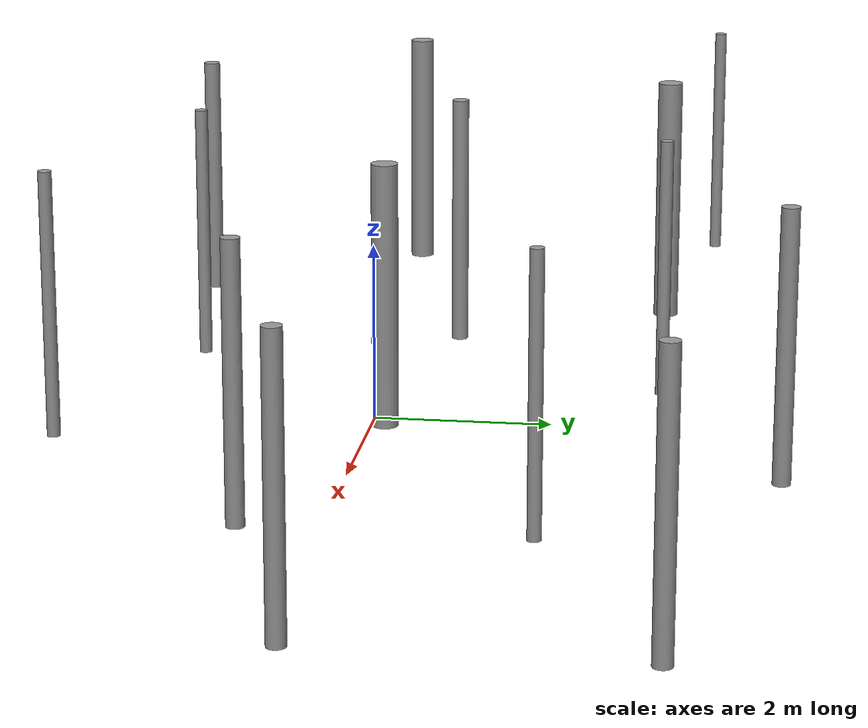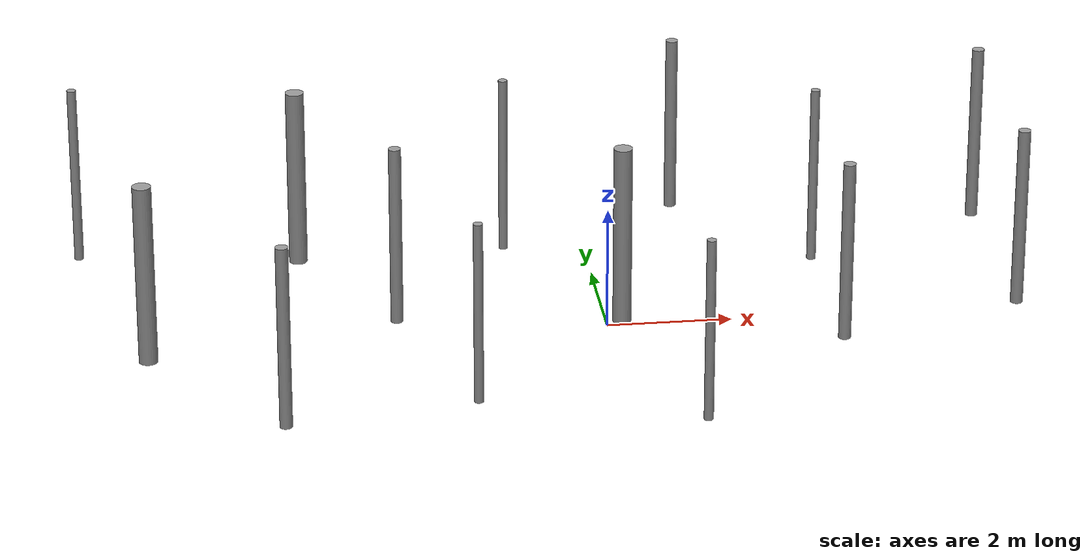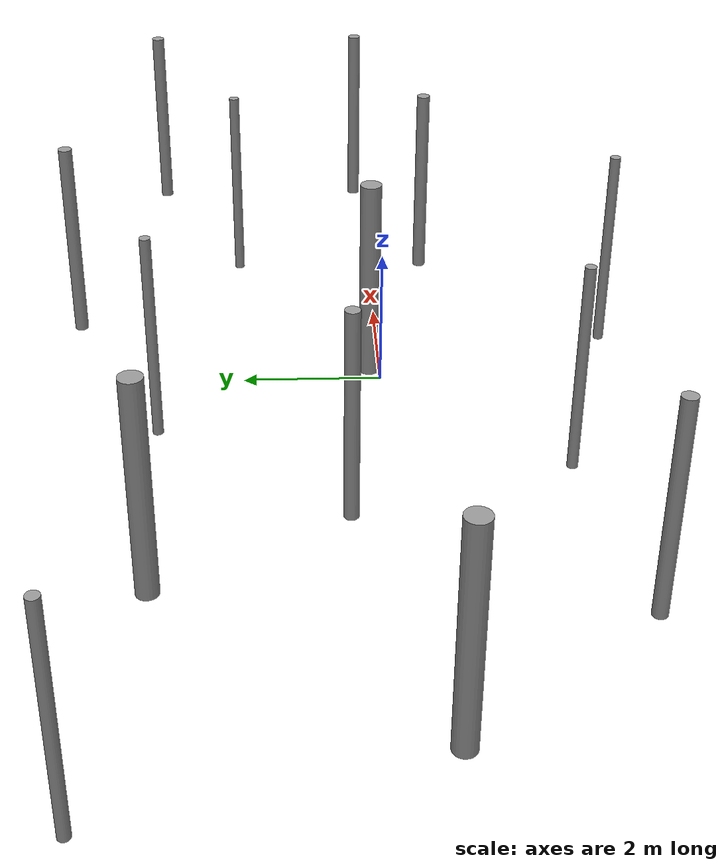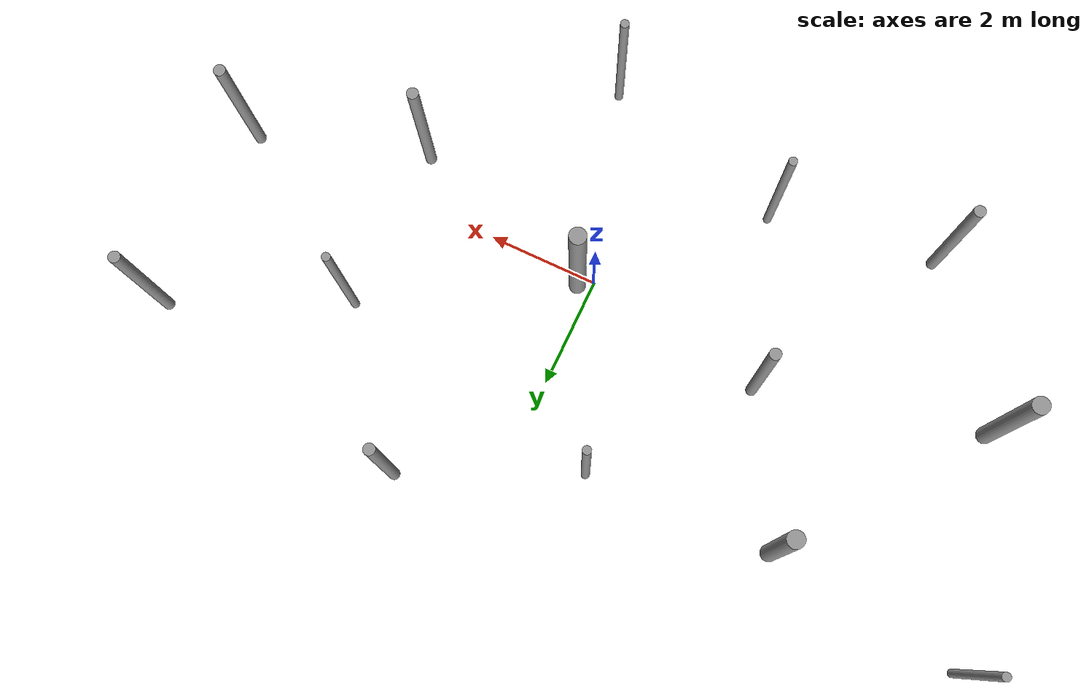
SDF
<?xml version='1.0'?>
<sdf version='1.6'>
  <model name='cylinderset_iitp'>
   <static>true</static>
    <link name='link_2'>
      <pose frame=''>-8.32014 3.57239 1.5 0 -0 0</pose>
      <inertial>
        <mass>1</mass>
        <inertia>
          <ixx>0.145833</ixx>
          <ixy>0</ixy>
          <ixz>0</ixz>
          <iyy>0.145833</iyy>
          <iyz>0</iyz>
          <izz>0.125</izz>
        </inertia>
        <pose frame=''>0 0 0 0 -0 0</pose>
      </inertial>
      <self_collide>0</self_collide>
      <kinematic>0</kinematic>
      <gravity>1</gravity>
      <visual name='visual'>
        <pose frame=''>0 0 0 0 -0 0</pose>
        <geometry>
          <cylinder>
            <radius>0.075</radius>
            <length>3</length>
          </cylinder>
        </geometry>
        <material>
          <lighting>1</lighting>
          <script>
            <uri>file://media/materials/scripts/gazebo.material</uri>
            <name>Gazebo/Grey</name>
          </script>
          <ambient>0.3 0.3 0.3 1</ambient>
          <diffuse>0.7 0.7 0.7 1</diffuse>
          <specular>0.01 0.01 0.01 1</specular>
          <emissive>0 0 0 1</emissive>
          <shader type='vertex'>
            <normal_map>__default__</normal_map>
          </shader>
        </material>
        <cast_shadows>1</cast_shadows>
        <transparency>0</transparency>
      </visual>
      <collision name='collision'>
        <laser_retro>0</laser_retro>
        <max_contacts>10</max_contacts>
        <pose frame=''>0 0 0 0 -0 0</pose>
        <geometry>
          <cylinder>
            <radius>0.075</radius>
            <length>3</length>
          </cylinder>
        </geometry>
        <surface>
          <friction>
            <ode>
              <mu>1</mu>
              <mu2>1</mu2>
              <fdir1>0 0 0</fdir1>
              <slip1>0</slip1>
              <slip2>0</slip2>
            </ode>
            <torsional>
              <coefficient>1</coefficient>
              <patch_radius>0</patch_radius>
              <surface_radius>0</surface_radius>
              <use_patch_radius>1</use_patch_radius>
              <ode>
                <slip>0</slip>
              </ode>
            </torsional>
          </friction>
          <bounce>
            <restitution_coefficient>0</restitution_coefficient>
            <threshold>1e+06</threshold>
          </bounce>
          <contact>
            <collide_without_contact>0</collide_without_contact>
            <collide_without_contact_bitmask>1</collide_without_contact_bitmask>
            <collide_bitmask>1</collide_bitmask>
            <ode>
              <soft_cfm>0</soft_cfm>
              <soft_erp>0.2</soft_erp>
              <kp>1e+13</kp>
              <kd>1</kd>
              <max_vel>0.01</max_vel>
              <min_depth>0</min_depth>
            </ode>
            <bullet>
              <split_impulse>1</split_impulse>
              <split_impulse_penetration_threshold>-0.01</split_impulse_penetration_threshold>
              <soft_cfm>0</soft_cfm>
              <soft_erp>0.2</soft_erp>
              <kp>1e+13</kp>
              <kd>1</kd>
            </bullet>
          </contact>
        </surface>
      </collision>
    </link>
    <link name='link_2_clone'>
      <pose frame=''>-7.32014 -0.427614 1.5 0 -0 0</pose>
      <inertial>
        <mass>1</mass>
        <inertia>
          <ixx>0.145833</ixx>
          <ixy>0</ixy>
          <ixz>0</ixz>
          <iyy>0.145833</iyy>
          <iyz>0</iyz>
          <izz>0.125</izz>
        </inertia>
        <pose frame=''>0 0 0 0 -0 0</pose>
      </inertial>
      <self_collide>0</self_collide>
      <kinematic>0</kinematic>
      <gravity>1</gravity>
      <visual name='visual'>
        <pose frame=''>0 0 0 0 -0 0</pose>
        <geometry>
          <cylinder>
            <radius>0.15</radius>
            <length>3</length>
          </cylinder>
        </geometry>
        <material>
          <lighting>1</lighting>
          <script>
            <uri>file://media/materials/scripts/gazebo.material</uri>
            <name>Gazebo/Grey</name>
          </script>
          <ambient>0.3 0.3 0.3 1</ambient>
          <diffuse>0.7 0.7 0.7 1</diffuse>
          <specular>0.01 0.01 0.01 1</specular>
          <emissive>0 0 0 1</emissive>
          <shader type='vertex'>
            <normal_map>__default__</normal_map>
          </shader>
        </material>
        <cast_shadows>1</cast_shadows>
        <transparency>0</transparency>
      </visual>
      <collision name='collision'>
        <laser_retro>0</laser_retro>
        <max_contacts>10</max_contacts>
        <pose frame=''>0 0 0 0 -0 0</pose>
        <geometry>
          <cylinder>
            <radius>0.15</radius>
            <length>3</length>
          </cylinder>
        </geometry>
        <surface>
          <friction>
            <ode>
              <mu>1</mu>
              <mu2>1</mu2>
              <fdir1>0 0 0</fdir1>
              <slip1>0</slip1>
              <slip2>0</slip2>
            </ode>
            <torsional>
              <coefficient>1</coefficient>
              <patch_radius>0</patch_radius>
              <surface_radius>0</surface_radius>
              <use_patch_radius>1</use_patch_radius>
              <ode>
                <slip>0</slip>
              </ode>
            </torsional>
          </friction>
          <bounce>
            <restitution_coefficient>0</restitution_coefficient>
            <threshold>1e+06</threshold>
          </bounce>
          <contact>
            <collide_without_contact>0</collide_without_contact>
            <collide_without_contact_bitmask>1</collide_without_contact_bitmask>
            <collide_bitmask>1</collide_bitmask>
            <ode>
              <soft_cfm>0</soft_cfm>
              <soft_erp>0.2</soft_erp>
              <kp>1e+13</kp>
              <kd>1</kd>
              <max_vel>0.01</max_vel>
              <min_depth>0</min_depth>
            </ode>
            <bullet>
              <split_impulse>1</split_impulse>
              <split_impulse_penetration_threshold>-0.01</split_impulse_penetration_threshold>
              <soft_cfm>0</soft_cfm>
              <soft_erp>0.2</soft_erp>
              <kp>1e+13</kp>
              <kd>1</kd>
            </bullet>
          </contact>
        </surface>
      </collision>
    </link>
    <link name='link_2_clone_0'>
      <pose frame=''>-5.32014 -2.92155 1.5 0 -0 0</pose>
      <inertial>
        <mass>1</mass>
        <inertia>
          <ixx>0.145833</ixx>
          <ixy>0</ixy>
          <ixz>0</ixz>
          <iyy>0.145833</iyy>
          <iyz>0</iyz>
          <izz>0.125</izz>
        </inertia>
        <pose frame=''>0 0 0 0 -0 0</pose>
      </inertial>
      <self_collide>0</self_collide>
      <kinematic>0</kinematic>
      <gravity>1</gravity>
      <visual name='visual'>
        <pose frame=''>0 0 0 0 -0 0</pose>
        <geometry>
          <cylinder>
            <radius>0.1</radius>
            <length>3</length>
          </cylinder>
        </geometry>
        <material>
          <lighting>1</lighting>
          <script>
            <uri>file://media/materials/scripts/gazebo.material</uri>
            <name>Gazebo/Grey</name>
          </script>
          <ambient>0.3 0.3 0.3 1</ambient>
          <diffuse>0.7 0.7 0.7 1</diffuse>
          <specular>0.01 0.01 0.01 1</specular>
          <emissive>0 0 0 1</emissive>
          <shader type='vertex'>
            <normal_map>__default__</normal_map>
          </shader>
        </material>
        <cast_shadows>1</cast_shadows>
        <transparency>0</transparency>
      </visual>
      <collision name='collision'>
        <laser_retro>0</laser_retro>
        <max_contacts>10</max_contacts>
        <pose frame=''>0 0 0 0 -0 0</pose>
        <geometry>
          <cylinder>
            <radius>0.1</radius>
            <length>3</length>
          </cylinder>
        </geometry>
        <surface>
          <friction>
            <ode>
              <mu>1</mu>
              <mu2>1</mu2>
              <fdir1>0 0 0</fdir1>
              <slip1>0</slip1>
              <slip2>0</slip2>
            </ode>
            <torsional>
              <coefficient>1</coefficient>
              <patch_radius>0</patch_radius>
              <surface_radius>0</surface_radius>
              <use_patch_radius>1</use_patch_radius>
              <ode>
                <slip>0</slip>
              </ode>
            </torsional>
          </friction>
          <bounce>
            <restitution_coefficient>0</restitution_coefficient>
            <threshold>1e+06</threshold>
          </bounce>
          <contact>
            <collide_without_contact>0</collide_without_contact>
            <collide_without_contact_bitmask>1</collide_without_contact_bitmask>
            <collide_bitmask>1</collide_bitmask>
            <ode>
              <soft_cfm>0</soft_cfm>
              <soft_erp>0.2</soft_erp>
              <kp>1e+13</kp>
              <kd>1</kd>
              <max_vel>0.01</max_vel>
              <min_depth>0</min_depth>
            </ode>
            <bullet>
              <split_impulse>1</split_impulse>
              <split_impulse_penetration_threshold>-0.01</split_impulse_penetration_threshold>
              <soft_cfm>0</soft_cfm>
              <soft_erp>0.2</soft_erp>
              <kp>1e+13</kp>
              <kd>1</kd>
            </bullet>
          </contact>
        </surface>
      </collision>
    </link>
    <link name='link_2_clone_0_clone'>
      <pose frame=''>-3.32014 0.572386 1.5 0 -0 0</pose>
      <inertial>
        <mass>1</mass>
        <inertia>
          <ixx>0.145833</ixx>
          <ixy>0</ixy>
          <ixz>0</ixz>
          <iyy>0.145833</iyy>
          <iyz>0</iyz>
          <izz>0.125</izz>
        </inertia>
        <pose frame=''>0 0 0 0 -0 0</pose>
      </inertial>
      <self_collide>0</self_collide>
      <kinematic>0</kinematic>
      <gravity>1</gravity>
      <visual name='visual'>
        <pose frame=''>0 0 0 0 -0 0</pose>
        <geometry>
          <cylinder>
            <radius>0.1</radius>
            <length>3</length>
          </cylinder>
        </geometry>
        <material>
          <lighting>1</lighting>
          <script>
            <uri>file://media/materials/scripts/gazebo.material</uri>
            <name>Gazebo/Grey</name>
          </script>
          <ambient>0.3 0.3 0.3 1</ambient>
          <diffuse>0.7 0.7 0.7 1</diffuse>
          <specular>0.01 0.01 0.01 1</specular>
          <emissive>0 0 0 1</emissive>
          <shader type='vertex'>
            <normal_map>__default__</normal_map>
          </shader>
        </material>
        <cast_shadows>1</cast_shadows>
        <transparency>0</transparency>
      </visual>
      <collision name='collision'>
        <laser_retro>0</laser_retro>
        <max_contacts>10</max_contacts>
        <pose frame=''>0 0 0 0 -0 0</pose>
        <geometry>
          <cylinder>
            <radius>0.1</radius>
            <length>3</length>
          </cylinder>
        </geometry>
        <surface>
          <friction>
            <ode>
              <mu>1</mu>
              <mu2>1</mu2>
              <fdir1>0 0 0</fdir1>
              <slip1>0</slip1>
              <slip2>0</slip2>
            </ode>
            <torsional>
              <coefficient>1</coefficient>
              <patch_radius>0</patch_radius>
              <surface_radius>0</surface_radius>
              <use_patch_radius>1</use_patch_radius>
              <ode>
                <slip>0</slip>
              </ode>
            </torsional>
          </friction>
          <bounce>
            <restitution_coefficient>0</restitution_coefficient>
            <threshold>1e+06</threshold>
          </bounce>
          <contact>
            <collide_without_contact>0</collide_without_contact>
            <collide_without_contact_bitmask>1</collide_without_contact_bitmask>
            <collide_bitmask>1</collide_bitmask>
            <ode>
              <soft_cfm>0</soft_cfm>
              <soft_erp>0.2</soft_erp>
              <kp>1e+13</kp>
              <kd>1</kd>
              <max_vel>0.01</max_vel>
              <min_depth>0</min_depth>
            </ode>
            <bullet>
              <split_impulse>1</split_impulse>
              <split_impulse_penetration_threshold>-0.01</split_impulse_penetration_threshold>
              <soft_cfm>0</soft_cfm>
              <soft_erp>0.2</soft_erp>
              <kp>1e+13</kp>
              <kd>1</kd>
            </bullet>
          </contact>
        </surface>
      </collision>
    </link>
    <link name='link_2_clone_0_clone_clone'>
      <pose frame=''>3.67986 -0.866514 1.5 0 -0 0</pose>
      <inertial>
        <mass>1</mass>
        <inertia>
          <ixx>0.145833</ixx>
          <ixy>0</ixy>
          <ixz>0</ixz>
          <iyy>0.145833</iyy>
          <iyz>0</iyz>
          <izz>0.125</izz>
        </inertia>
        <pose frame=''>0 0 0 0 -0 0</pose>
      </inertial>
      <self_collide>0</self_collide>
      <kinematic>0</kinematic>
      <gravity>1</gravity>
      <visual name='visual'>
        <pose frame=''>0 0 0 0 -0 0</pose>
        <geometry>
          <cylinder>
            <radius>0.1</radius>
            <length>3</length>
          </cylinder>
        </geometry>
        <material>
          <lighting>1</lighting>
          <script>
            <uri>file://media/materials/scripts/gazebo.material</uri>
            <name>Gazebo/Grey</name>
          </script>
          <ambient>0.3 0.3 0.3 1</ambient>
          <diffuse>0.7 0.7 0.7 1</diffuse>
          <specular>0.01 0.01 0.01 1</specular>
          <emissive>0 0 0 1</emissive>
          <shader type='vertex'>
            <normal_map>__default__</normal_map>
          </shader>
        </material>
        <cast_shadows>1</cast_shadows>
        <transparency>0</transparency>
      </visual>
      <collision name='collision'>
        <laser_retro>0</laser_retro>
        <max_contacts>10</max_contacts>
        <pose frame=''>0 0 0 0 -0 0</pose>
        <geometry>
          <cylinder>
            <radius>0.1</radius>
            <length>3</length>
          </cylinder>
        </geometry>
        <surface>
          <friction>
            <ode>
              <mu>1</mu>
              <mu2>1</mu2>
              <fdir1>0 0 0</fdir1>
              <slip1>0</slip1>
              <slip2>0</slip2>
            </ode>
            <torsional>
              <coefficient>1</coefficient>
              <patch_radius>0</patch_radius>
              <surface_radius>0</surface_radius>
              <use_patch_radius>1</use_patch_radius>
              <ode>
                <slip>0</slip>
              </ode>
            </torsional>
          </friction>
          <bounce>
            <restitution_coefficient>0</restitution_coefficient>
            <threshold>1e+06</threshold>
          </bounce>
          <contact>
            <collide_without_contact>0</collide_without_contact>
            <collide_without_contact_bitmask>1</collide_without_contact_bitmask>
            <collide_bitmask>1</collide_bitmask>
            <ode>
              <soft_cfm>0</soft_cfm>
              <soft_erp>0.2</soft_erp>
              <kp>1e+13</kp>
              <kd>1</kd>
              <max_vel>0.01</max_vel>
              <min_depth>0</min_depth>
            </ode>
            <bullet>
              <split_impulse>1</split_impulse>
              <split_impulse_penetration_threshold>-0.01</split_impulse_penetration_threshold>
              <soft_cfm>0</soft_cfm>
              <soft_erp>0.2</soft_erp>
              <kp>1e+13</kp>
              <kd>1</kd>
            </bullet>
          </contact>
        </surface>
      </collision>
    </link>
    <link name='link_2_clone_0_clone_clone_0'>
      <pose frame=''>1.67986 4.57239 1.5 0 -0 0</pose>
      <inertial>
        <mass>1</mass>
        <inertia>
          <ixx>0.145833</ixx>
          <ixy>0</ixy>
          <ixz>0</ixz>
          <iyy>0.145833</iyy>
          <iyz>0</iyz>
          <izz>0.125</izz>
        </inertia>
        <pose frame=''>0 0 0 0 -0 0</pose>
      </inertial>
      <self_collide>0</self_collide>
      <kinematic>0</kinematic>
      <gravity>1</gravity>
      <visual name='visual'>
        <pose frame=''>0 0 0 0 -0 0</pose>
        <geometry>
          <cylinder>
            <radius>0.1</radius>
            <length>3</length>
          </cylinder>
        </geometry>
        <material>
          <lighting>1</lighting>
          <script>
            <uri>file://media/materials/scripts/gazebo.material</uri>
            <name>Gazebo/Grey</name>
          </script>
          <ambient>0.3 0.3 0.3 1</ambient>
          <diffuse>0.7 0.7 0.7 1</diffuse>
          <specular>0.01 0.01 0.01 1</specular>
          <emissive>0 0 0 1</emissive>
          <shader type='vertex'>
            <normal_map>__default__</normal_map>
          </shader>
        </material>
        <cast_shadows>1</cast_shadows>
        <transparency>0</transparency>
      </visual>
      <collision name='collision'>
        <laser_retro>0</laser_retro>
        <max_contacts>10</max_contacts>
        <pose frame=''>0 0 0 0 -0 0</pose>
        <geometry>
          <cylinder>
            <radius>0.1</radius>
            <length>3</length>
          </cylinder>
        </geometry>
        <surface>
          <friction>
            <ode>
              <mu>1</mu>
              <mu2>1</mu2>
              <fdir1>0 0 0</fdir1>
              <slip1>0</slip1>
              <slip2>0</slip2>
            </ode>
            <torsional>
              <coefficient>1</coefficient>
              <patch_radius>0</patch_radius>
              <surface_radius>0</surface_radius>
              <use_patch_radius>1</use_patch_radius>
              <ode>
                <slip>0</slip>
              </ode>
            </torsional>
          </friction>
          <bounce>
            <restitution_coefficient>0</restitution_coefficient>
            <threshold>1e+06</threshold>
          </bounce>
          <contact>
            <collide_without_contact>0</collide_without_contact>
            <collide_without_contact_bitmask>1</collide_without_contact_bitmask>
            <collide_bitmask>1</collide_bitmask>
            <ode>
              <soft_cfm>0</soft_cfm>
              <soft_erp>0.2</soft_erp>
              <kp>1e+13</kp>
              <kd>1</kd>
              <max_vel>0.01</max_vel>
              <min_depth>0</min_depth>
            </ode>
            <bullet>
              <split_impulse>1</split_impulse>
              <split_impulse_penetration_threshold>-0.01</split_impulse_penetration_threshold>
              <soft_cfm>0</soft_cfm>
              <soft_erp>0.2</soft_erp>
              <kp>1e+13</kp>
              <kd>1</kd>
            </bullet>
          </contact>
        </surface>
      </collision>
    </link>
    <link name='link_2_clone_0_clone_clone_clone'>
      <pose frame=''>6.67986 3.57239 1.5 0 -0 0</pose>
      <inertial>
        <mass>1</mass>
        <inertia>
          <ixx>0.145833</ixx>
          <ixy>0</ixy>
          <ixz>0</ixz>
          <iyy>0.145833</iyy>
          <iyz>0</iyz>
          <izz>0.125</izz>
        </inertia>
        <pose frame=''>0 0 0 0 -0 0</pose>
      </inertial>
      <self_collide>0</self_collide>
      <kinematic>0</kinematic>
      <gravity>1</gravity>
      <visual name='visual'>
        <pose frame=''>0 0 0 0 -0 0</pose>
        <geometry>
          <cylinder>
            <radius>0.1</radius>
            <length>3</length>
          </cylinder>
        </geometry>
        <material>
          <lighting>1</lighting>
          <script>
            <uri>file://media/materials/scripts/gazebo.material</uri>
            <name>Gazebo/Grey</name>
          </script>
          <ambient>0.3 0.3 0.3 1</ambient>
          <diffuse>0.7 0.7 0.7 1</diffuse>
          <specular>0.01 0.01 0.01 1</specular>
          <emissive>0 0 0 1</emissive>
          <shader type='vertex'>
            <normal_map>__default__</normal_map>
          </shader>
        </material>
        <cast_shadows>1</cast_shadows>
        <transparency>0</transparency>
      </visual>
      <collision name='collision'>
        <laser_retro>0</laser_retro>
        <max_contacts>10</max_contacts>
        <pose frame=''>0 0 0 0 -0 0</pose>
        <geometry>
          <cylinder>
            <radius>0.1</radius>
            <length>3</length>
          </cylinder>
        </geometry>
        <surface>
          <friction>
            <ode>
              <mu>1</mu>
              <mu2>1</mu2>
              <fdir1>0 0 0</fdir1>
              <slip1>0</slip1>
              <slip2>0</slip2>
            </ode>
            <torsional>
              <coefficient>1</coefficient>
              <patch_radius>0</patch_radius>
              <surface_radius>0</surface_radius>
              <use_patch_radius>1</use_patch_radius>
              <ode>
                <slip>0</slip>
              </ode>
            </torsional>
          </friction>
          <bounce>
            <restitution_coefficient>0</restitution_coefficient>
            <threshold>1e+06</threshold>
          </bounce>
          <contact>
            <collide_without_contact>0</collide_without_contact>
            <collide_without_contact_bitmask>1</collide_without_contact_bitmask>
            <collide_bitmask>1</collide_bitmask>
            <ode>
              <soft_cfm>0</soft_cfm>
              <soft_erp>0.2</soft_erp>
              <kp>1e+13</kp>
              <kd>1</kd>
              <max_vel>0.01</max_vel>
              <min_depth>0</min_depth>
            </ode>
            <bullet>
              <split_impulse>1</split_impulse>
              <split_impulse_penetration_threshold>-0.01</split_impulse_penetration_threshold>
              <soft_cfm>0</soft_cfm>
              <soft_erp>0.2</soft_erp>
              <kp>1e+13</kp>
              <kd>1</kd>
            </bullet>
          </contact>
        </surface>
      </collision>
    </link>
    <link name='link_2_clone_0_clone_clone_clone_0'>
      <pose frame=''>6.67986 0.107852 1.5 0 -0 0</pose>
      <inertial>
        <mass>1</mass>
        <inertia>
          <ixx>0.145833</ixx>
          <ixy>0</ixy>
          <ixz>0</ixz>
          <iyy>0.145833</iyy>
          <iyz>0</iyz>
          <izz>0.125</izz>
        </inertia>
        <pose frame=''>0 0 0 0 -0 0</pose>
      </inertial>
      <self_collide>0</self_collide>
      <kinematic>0</kinematic>
      <gravity>1</gravity>
      <visual name='visual'>
        <pose frame=''>0 0 0 0 -0 0</pose>
        <geometry>
          <cylinder>
            <radius>0.1</radius>
            <length>3</length>
          </cylinder>
        </geometry>
        <material>
          <lighting>1</lighting>
          <script>
            <uri>file://media/materials/scripts/gazebo.material</uri>
            <name>Gazebo/Grey</name>
          </script>
          <ambient>0.3 0.3 0.3 1</ambient>
          <diffuse>0.7 0.7 0.7 1</diffuse>
          <specular>0.01 0.01 0.01 1</specular>
          <emissive>0 0 0 1</emissive>
          <shader type='vertex'>
            <normal_map>__default__</normal_map>
          </shader>
        </material>
        <cast_shadows>1</cast_shadows>
        <transparency>0</transparency>
      </visual>
      <collision name='collision'>
        <laser_retro>0</laser_retro>
        <max_contacts>10</max_contacts>
        <pose frame=''>0 0 0 0 -0 0</pose>
        <geometry>
          <cylinder>
            <radius>0.1</radius>
            <length>3</length>
          </cylinder>
        </geometry>
        <surface>
          <friction>
            <ode>
              <mu>1</mu>
              <mu2>1</mu2>
              <fdir1>0 0 0</fdir1>
              <slip1>0</slip1>
              <slip2>0</slip2>
            </ode>
            <torsional>
              <coefficient>1</coefficient>
              <patch_radius>0</patch_radius>
              <surface_radius>0</surface_radius>
              <use_patch_radius>1</use_patch_radius>
              <ode>
                <slip>0</slip>
              </ode>
            </torsional>
          </friction>
          <bounce>
            <restitution_coefficient>0</restitution_coefficient>
            <threshold>1e+06</threshold>
          </bounce>
          <contact>
            <collide_without_contact>0</collide_without_contact>
            <collide_without_contact_bitmask>1</collide_without_contact_bitmask>
            <collide_bitmask>1</collide_bitmask>
            <ode>
              <soft_cfm>0</soft_cfm>
              <soft_erp>0.2</soft_erp>
              <kp>1e+13</kp>
              <kd>1</kd>
              <max_vel>0.01</max_vel>
              <min_depth>0</min_depth>
            </ode>
            <bullet>
              <split_impulse>1</split_impulse>
              <split_impulse_penetration_threshold>-0.01</split_impulse_penetration_threshold>
              <soft_cfm>0</soft_cfm>
              <soft_erp>0.2</soft_erp>
              <kp>1e+13</kp>
              <kd>1</kd>
            </bullet>
          </contact>
        </surface>
      </collision>
    </link>
    <link name='link_2_clone_1'>
      <pose frame=''>-2.32014 -2.42761 1.5 0 -0 0</pose>
      <inertial>
        <mass>1</mass>
        <inertia>
          <ixx>0.145833</ixx>
          <ixy>0</ixy>
          <ixz>0</ixz>
          <iyy>0.145833</iyy>
          <iyz>0</iyz>
          <izz>0.125</izz>
        </inertia>
        <pose frame=''>0 0 0 0 -0 0</pose>
      </inertial>
      <self_collide>0</self_collide>
      <kinematic>0</kinematic>
      <gravity>1</gravity>
      <visual name='visual'>
        <pose frame=''>0 0 0 0 -0 0</pose>
        <geometry>
          <cylinder>
            <radius>0.075</radius>
            <length>3</length>
          </cylinder>
        </geometry>
        <material>
          <lighting>1</lighting>
          <script>
            <uri>file://media/materials/scripts/gazebo.material</uri>
            <name>Gazebo/Grey</name>
          </script>
          <ambient>0.3 0.3 0.3 1</ambient>
          <diffuse>0.7 0.7 0.7 1</diffuse>
          <specular>0.01 0.01 0.01 1</specular>
          <emissive>0 0 0 1</emissive>
          <shader type='vertex'>
            <normal_map>__default__</normal_map>
          </shader>
        </material>
        <cast_shadows>1</cast_shadows>
        <transparency>0</transparency>
      </visual>
      <collision name='collision'>
        <laser_retro>0</laser_retro>
        <max_contacts>10</max_contacts>
        <pose frame=''>0 0 0 0 -0 0</pose>
        <geometry>
          <cylinder>
            <radius>0.075</radius>
            <length>3</length>
          </cylinder>
        </geometry>
        <surface>
          <friction>
            <ode>
              <mu>1</mu>
              <mu2>1</mu2>
              <fdir1>0 0 0</fdir1>
              <slip1>0</slip1>
              <slip2>0</slip2>
            </ode>
            <torsional>
              <coefficient>1</coefficient>
              <patch_radius>0</patch_radius>
              <surface_radius>0</surface_radius>
              <use_patch_radius>1</use_patch_radius>
              <ode>
                <slip>0</slip>
              </ode>
            </torsional>
          </friction>
          <bounce>
            <restitution_coefficient>0</restitution_coefficient>
            <threshold>1e+06</threshold>
          </bounce>
          <contact>
            <collide_without_contact>0</collide_without_contact>
            <collide_without_contact_bitmask>1</collide_without_contact_bitmask>
            <collide_bitmask>1</collide_bitmask>
            <ode>
              <soft_cfm>0</soft_cfm>
              <soft_erp>0.2</soft_erp>
              <kp>1e+13</kp>
              <kd>1</kd>
              <max_vel>0.01</max_vel>
              <min_depth>0</min_depth>
            </ode>
            <bullet>
              <split_impulse>1</split_impulse>
              <split_impulse_penetration_threshold>-0.01</split_impulse_penetration_threshold>
              <soft_cfm>0</soft_cfm>
              <soft_erp>0.2</soft_erp>
              <kp>1e+13</kp>
              <kd>1</kd>
            </bullet>
          </contact>
        </surface>
      </collision>
    </link>
    <link name='link_2_clone_2'>
      <pose frame=''>-1.32014 3.16828 1.5 0 -0 0</pose>
      <inertial>
        <mass>1</mass>
        <inertia>
          <ixx>0.145833</ixx>
          <ixy>0</ixy>
          <ixz>0</ixz>
          <iyy>0.145833</iyy>
          <iyz>0</iyz>
          <izz>0.125</izz>
        </inertia>
        <pose frame=''>0 0 0 0 -0 0</pose>
      </inertial>
      <self_collide>0</self_collide>
      <kinematic>0</kinematic>
      <gravity>1</gravity>
      <visual name='visual'>
        <pose frame=''>0 0 0 0 -0 0</pose>
        <geometry>
          <cylinder>
            <radius>0.075</radius>
            <length>3</length>
          </cylinder>
        </geometry>
        <material>
          <lighting>1</lighting>
          <script>
            <uri>file://media/materials/scripts/gazebo.material</uri>
            <name>Gazebo/Grey</name>
          </script>
          <ambient>0.3 0.3 0.3 1</ambient>
          <diffuse>0.7 0.7 0.7 1</diffuse>
          <specular>0.01 0.01 0.01 1</specular>
          <emissive>0 0 0 1</emissive>
          <shader type='vertex'>
            <normal_map>__default__</normal_map>
          </shader>
        </material>
        <cast_shadows>1</cast_shadows>
        <transparency>0</transparency>
      </visual>
      <collision name='collision'>
        <laser_retro>0</laser_retro>
        <max_contacts>10</max_contacts>
        <pose frame=''>0 0 0 0 -0 0</pose>
        <geometry>
          <cylinder>
            <radius>0.075</radius>
            <length>3</length>
          </cylinder>
        </geometry>
        <surface>
          <friction>
            <ode>
              <mu>1</mu>
              <mu2>1</mu2>
              <fdir1>0 0 0</fdir1>
              <slip1>0</slip1>
              <slip2>0</slip2>
            </ode>
            <torsional>
              <coefficient>1</coefficient>
              <patch_radius>0</patch_radius>
              <surface_radius>0</surface_radius>
              <use_patch_radius>1</use_patch_radius>
              <ode>
                <slip>0</slip>
              </ode>
            </torsional>
          </friction>
          <bounce>
            <restitution_coefficient>0</restitution_coefficient>
            <threshold>1e+06</threshold>
          </bounce>
          <contact>
            <collide_without_contact>0</collide_without_contact>
            <collide_without_contact_bitmask>1</collide_without_contact_bitmask>
            <collide_bitmask>1</collide_bitmask>
            <ode>
              <soft_cfm>0</soft_cfm>
              <soft_erp>0.2</soft_erp>
              <kp>1e+13</kp>
              <kd>1</kd>
              <max_vel>0.01</max_vel>
              <min_depth>0</min_depth>
            </ode>
            <bullet>
              <split_impulse>1</split_impulse>
              <split_impulse_penetration_threshold>-0.01</split_impulse_penetration_threshold>
              <soft_cfm>0</soft_cfm>
              <soft_erp>0.2</soft_erp>
              <kp>1e+13</kp>
              <kd>1</kd>
            </bullet>
          </contact>
        </surface>
      </collision>
    </link>
    <link name='link_2_clone_2_clone'>
      <pose frame=''>3.67986 2.15275 1.5 0 -0 0</pose>
      <inertial>
        <mass>1</mass>
        <inertia>
          <ixx>0.145833</ixx>
          <ixy>0</ixy>
          <ixz>0</ixz>
          <iyy>0.145833</iyy>
          <iyz>0</iyz>
          <izz>0.125</izz>
        </inertia>
        <pose frame=''>0 0 0 0 -0 0</pose>
      </inertial>
      <self_collide>0</self_collide>
      <kinematic>0</kinematic>
      <gravity>1</gravity>
      <visual name='visual'>
        <pose frame=''>0 0 0 0 -0 0</pose>
        <geometry>
          <cylinder>
            <radius>0.075</radius>
            <length>3</length>
          </cylinder>
        </geometry>
        <material>
          <lighting>1</lighting>
          <script>
            <uri>file://media/materials/scripts/gazebo.material</uri>
            <name>Gazebo/Grey</name>
          </script>
          <ambient>0.3 0.3 0.3 1</ambient>
          <diffuse>0.7 0.7 0.7 1</diffuse>
          <specular>0.01 0.01 0.01 1</specular>
          <emissive>0 0 0 1</emissive>
          <shader type='vertex'>
            <normal_map>__default__</normal_map>
          </shader>
        </material>
        <cast_shadows>1</cast_shadows>
        <transparency>0</transparency>
      </visual>
      <collision name='collision'>
        <laser_retro>0</laser_retro>
        <max_contacts>10</max_contacts>
        <pose frame=''>0 0 0 0 -0 0</pose>
        <geometry>
          <cylinder>
            <radius>0.075</radius>
            <length>3</length>
          </cylinder>
        </geometry>
        <surface>
          <friction>
            <ode>
              <mu>1</mu>
              <mu2>1</mu2>
              <fdir1>0 0 0</fdir1>
              <slip1>0</slip1>
              <slip2>0</slip2>
            </ode>
            <torsional>
              <coefficient>1</coefficient>
              <patch_radius>0</patch_radius>
              <surface_radius>0</surface_radius>
              <use_patch_radius>1</use_patch_radius>
              <ode>
                <slip>0</slip>
              </ode>
            </torsional>
          </friction>
          <bounce>
            <restitution_coefficient>0</restitution_coefficient>
            <threshold>1e+06</threshold>
          </bounce>
          <contact>
            <collide_without_contact>0</collide_without_contact>
            <collide_without_contact_bitmask>1</collide_without_contact_bitmask>
            <collide_bitmask>1</collide_bitmask>
            <ode>
              <soft_cfm>0</soft_cfm>
              <soft_erp>0.2</soft_erp>
              <kp>1e+13</kp>
              <kd>1</kd>
              <max_vel>0.01</max_vel>
              <min_depth>0</min_depth>
            </ode>
            <bullet>
              <split_impulse>1</split_impulse>
              <split_impulse_penetration_threshold>-0.01</split_impulse_penetration_threshold>
              <soft_cfm>0</soft_cfm>
              <soft_erp>0.2</soft_erp>
              <kp>1e+13</kp>
              <kd>1</kd>
            </bullet>
          </contact>
        </surface>
      </collision>
    </link>
    <link name='link_2_clone_2_clone_0'>
      <pose frame=''>1.09746 -3.42761 1.5 0 -0 0</pose>
      <inertial>
        <mass>1</mass>
        <inertia>
          <ixx>0.145833</ixx>
          <ixy>0</ixy>
          <ixz>0</ixz>
          <iyy>0.145833</iyy>
          <iyz>0</iyz>
          <izz>0.125</izz>
        </inertia>
        <pose frame=''>0 0 0 0 -0 0</pose>
      </inertial>
      <self_collide>0</self_collide>
      <kinematic>0</kinematic>
      <gravity>1</gravity>
      <visual name='visual'>
        <pose frame=''>0 0 0 0 -0 0</pose>
        <geometry>
          <cylinder>
            <radius>0.075</radius>
            <length>3</length>
          </cylinder>
        </geometry>
        <material>
          <lighting>1</lighting>
          <script>
            <uri>file://media/materials/scripts/gazebo.material</uri>
            <name>Gazebo/Grey</name>
          </script>
          <ambient>0.3 0.3 0.3 1</ambient>
          <diffuse>0.7 0.7 0.7 1</diffuse>
          <specular>0.01 0.01 0.01 1</specular>
          <emissive>0 0 0 1</emissive>
          <shader type='vertex'>
            <normal_map>__default__</normal_map>
          </shader>
        </material>
        <cast_shadows>1</cast_shadows>
        <transparency>0</transparency>
      </visual>
      <collision name='collision'>
        <laser_retro>0</laser_retro>
        <max_contacts>10</max_contacts>
        <pose frame=''>0 0 0 0 -0 0</pose>
        <geometry>
          <cylinder>
            <radius>0.075</radius>
            <length>3</length>
          </cylinder>
        </geometry>
        <surface>
          <friction>
            <ode>
              <mu>1</mu>
              <mu2>1</mu2>
              <fdir1>0 0 0</fdir1>
              <slip1>0</slip1>
              <slip2>0</slip2>
            </ode>
            <torsional>
              <coefficient>1</coefficient>
              <patch_radius>0</patch_radius>
              <surface_radius>0</surface_radius>
              <use_patch_radius>1</use_patch_radius>
              <ode>
                <slip>0</slip>
              </ode>
            </torsional>
          </friction>
          <bounce>
            <restitution_coefficient>0</restitution_coefficient>
            <threshold>1e+06</threshold>
          </bounce>
          <contact>
            <collide_without_contact>0</collide_without_contact>
            <collide_without_contact_bitmask>1</collide_without_contact_bitmask>
            <collide_bitmask>1</collide_bitmask>
            <ode>
              <soft_cfm>0</soft_cfm>
              <soft_erp>0.2</soft_erp>
              <kp>1e+13</kp>
              <kd>1</kd>
              <max_vel>0.01</max_vel>
              <min_depth>0</min_depth>
            </ode>
            <bullet>
              <split_impulse>1</split_impulse>
              <split_impulse_penetration_threshold>-0.01</split_impulse_penetration_threshold>
              <soft_cfm>0</soft_cfm>
              <soft_erp>0.2</soft_erp>
              <kp>1e+13</kp>
              <kd>1</kd>
            </bullet>
          </contact>
        </surface>
      </collision>
    </link>
    <link name='link_2_clone_clone'>
      <pose frame=''>-4.73213 3.04958 1.5 0 -0 0</pose>
      <inertial>
        <mass>1</mass>
        <inertia>
          <ixx>0.145833</ixx>
          <ixy>0</ixy>
          <ixz>0</ixz>
          <iyy>0.145833</iyy>
          <iyz>0</iyz>
          <izz>0.125</izz>
        </inertia>
        <pose frame=''>0 0 0 0 -0 0</pose>
      </inertial>
      <self_collide>0</self_collide>
      <kinematic>0</kinematic>
      <gravity>1</gravity>
      <visual name='visual'>
        <pose frame=''>0 0 0 0 -0 0</pose>
        <geometry>
          <cylinder>
            <radius>0.15</radius>
            <length>3</length>
          </cylinder>
        </geometry>
        <material>
          <lighting>1</lighting>
          <script>
            <uri>file://media/materials/scripts/gazebo.material</uri>
            <name>Gazebo/Grey</name>
          </script>
          <ambient>0.3 0.3 0.3 1</ambient>
          <diffuse>0.7 0.7 0.7 1</diffuse>
          <specular>0.01 0.01 0.01 1</specular>
          <emissive>0 0 0 1</emissive>
          <shader type='vertex'>
            <normal_map>__default__</normal_map>
          </shader>
        </material>
        <cast_shadows>1</cast_shadows>
        <transparency>0</transparency>
      </visual>
      <collision name='collision'>
        <laser_retro>0</laser_retro>
        <max_contacts>10</max_contacts>
        <pose frame=''>0 0 0 0 -0 0</pose>
        <geometry>
          <cylinder>
            <radius>0.15</radius>
            <length>3</length>
          </cylinder>
        </geometry>
        <surface>
          <friction>
            <ode>
              <mu>1</mu>
              <mu2>1</mu2>
              <fdir1>0 0 0</fdir1>
              <slip1>0</slip1>
              <slip2>0</slip2>
            </ode>
            <torsional>
              <coefficient>1</coefficient>
              <patch_radius>0</patch_radius>
              <surface_radius>0</surface_radius>
              <use_patch_radius>1</use_patch_radius>
              <ode>
                <slip>0</slip>
              </ode>
            </torsional>
          </friction>
          <bounce>
            <restitution_coefficient>0</restitution_coefficient>
            <threshold>1e+06</threshold>
          </bounce>
          <contact>
            <collide_without_contact>0</collide_without_contact>
            <collide_without_contact_bitmask>1</collide_without_contact_bitmask>
            <collide_bitmask>1</collide_bitmask>
            <ode>
              <soft_cfm>0</soft_cfm>
              <soft_erp>0.2</soft_erp>
              <kp>1e+13</kp>
              <kd>1</kd>
              <max_vel>0.01</max_vel>
              <min_depth>0</min_depth>
            </ode>
            <bullet>
              <split_impulse>1</split_impulse>
              <split_impulse_penetration_threshold>-0.01</split_impulse_penetration_threshold>
              <soft_cfm>0</soft_cfm>
              <soft_erp>0.2</soft_erp>
              <kp>1e+13</kp>
              <kd>1</kd>
            </bullet>
          </contact>
        </surface>
      </collision>
    </link>
    <link name='link_2_clone_clone_clone'>
      <pose frame=''>0.253044 0.158116 1.5 0 -0 0</pose>
      <inertial>
        <mass>1</mass>
        <inertia>
          <ixx>0.145833</ixx>
          <ixy>0</ixy>
          <ixz>0</ixz>
          <iyy>0.145833</iyy>
          <iyz>0</iyz>
          <izz>0.125</izz>
        </inertia>
        <pose frame=''>0 0 0 0 -0 0</pose>
      </inertial>
      <self_collide>0</self_collide>
      <kinematic>0</kinematic>
      <gravity>1</gravity>
      <visual name='visual'>
        <pose frame=''>0 0 0 0 -0 0</pose>
        <geometry>
          <cylinder>
            <radius>0.15</radius>
            <length>3</length>
          </cylinder>
        </geometry>
        <material>
          <lighting>1</lighting>
          <script>
            <uri>file://media/materials/scripts/gazebo.material</uri>
            <name>Gazebo/Grey</name>
          </script>
          <ambient>0.3 0.3 0.3 1</ambient>
          <diffuse>0.7 0.7 0.7 1</diffuse>
          <specular>0.01 0.01 0.01 1</specular>
          <emissive>0 0 0 1</emissive>
          <shader type='vertex'>
            <normal_map>__default__</normal_map>
          </shader>
        </material>
        <cast_shadows>1</cast_shadows>
        <transparency>0</transparency>
      </visual>
      <collision name='collision'>
        <laser_retro>0</laser_retro>
        <max_contacts>10</max_contacts>
        <pose frame=''>0 0 0 0 -0 0</pose>
        <geometry>
          <cylinder>
            <radius>0.15</radius>
            <length>3</length>
          </cylinder>
        </geometry>
        <surface>
          <friction>
            <ode>
              <mu>1</mu>
              <mu2>1</mu2>
              <fdir1>0 0 0</fdir1>
              <slip1>0</slip1>
              <slip2>0</slip2>
            </ode>
            <torsional>
              <coefficient>1</coefficient>
              <patch_radius>0</patch_radius>
              <surface_radius>0</surface_radius>
              <use_patch_radius>1</use_patch_radius>
              <ode>
                <slip>0</slip>
              </ode>
            </torsional>
          </friction>
          <bounce>
            <restitution_coefficient>0</restitution_coefficient>
            <threshold>1e+06</threshold>
          </bounce>
          <contact>
            <collide_without_contact>0</collide_without_contact>
            <collide_without_contact_bitmask>1</collide_without_contact_bitmask>
            <collide_bitmask>1</collide_bitmask>
            <ode>
              <soft_cfm>0</soft_cfm>
              <soft_erp>0.2</soft_erp>
              <kp>1e+13</kp>
              <kd>1</kd>
              <max_vel>0.01</max_vel>
              <min_depth>0</min_depth>
            </ode>
            <bullet>
              <split_impulse>1</split_impulse>
              <split_impulse_penetration_threshold>-0.01</split_impulse_penetration_threshold>
              <soft_cfm>0</soft_cfm>
              <soft_erp>0.2</soft_erp>
              <kp>1e+13</kp>
              <kd>1</kd>
            </bullet>
          </contact>
        </surface>
      </collision>
    </link>
    <static>0</static>
    <allow_auto_disable>1</allow_auto_disable>
  </model>
</sdf>
